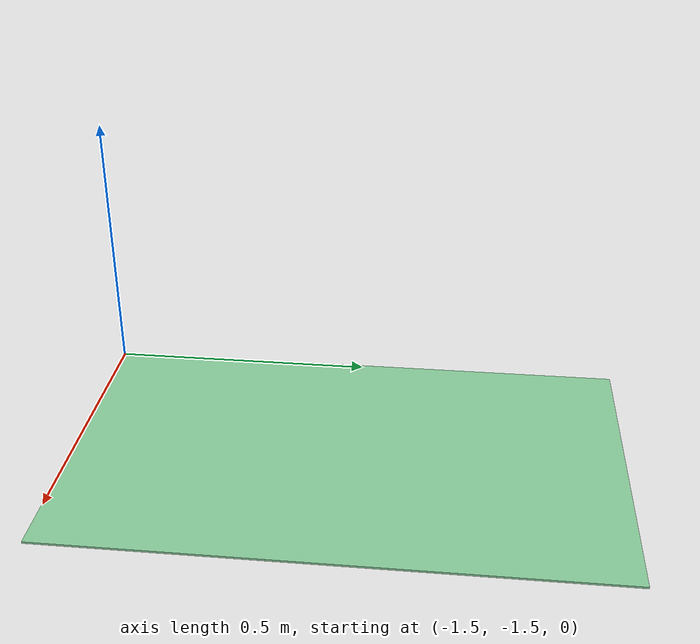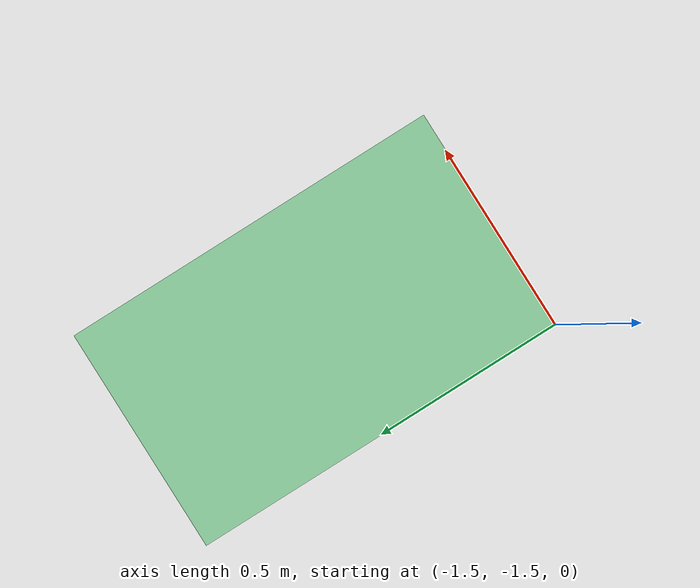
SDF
<sdf version="1.6">
 <world name="sq_community_4p2">
  <include><uri>model://sun</uri></include>
  <model name="sq4_zone_building_D">
   <static>true</static>
   <pose>-1.2000 -1.0000 0.0000 0 0 0.00000</pose>
   <link name="surface">
    <visual name="surface_vis">
     <pose>0.0000 0.0000 0.0018 0 0 0.00000</pose>
     <geometry><box><size>0.6000 1.0000 0.0035</size></box></geometry>
     <material>
      <ambient>0.5500 0.8200 0.6200 1.0000</ambient>
      <diffuse>0.5500 0.8200 0.6200 1.0000</diffuse>
     </material>
    </visual>
   </link>
  </model>
 </world>
</sdf>
